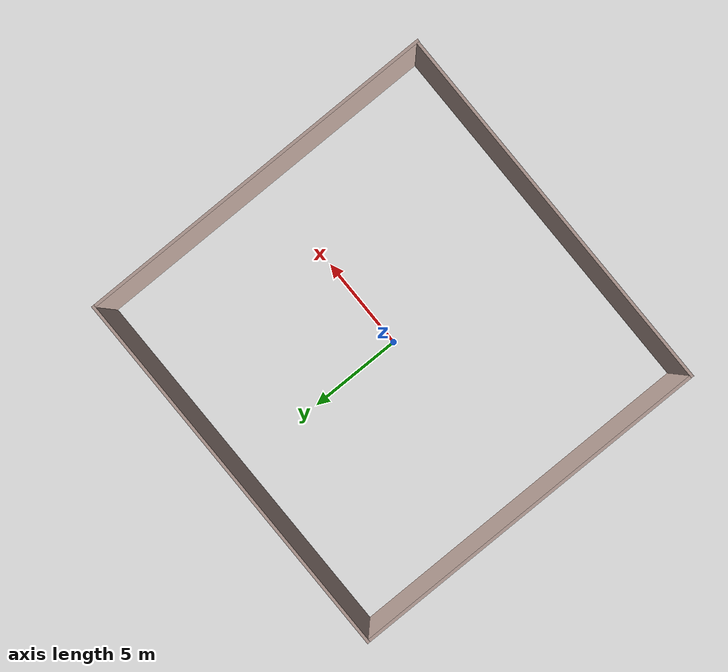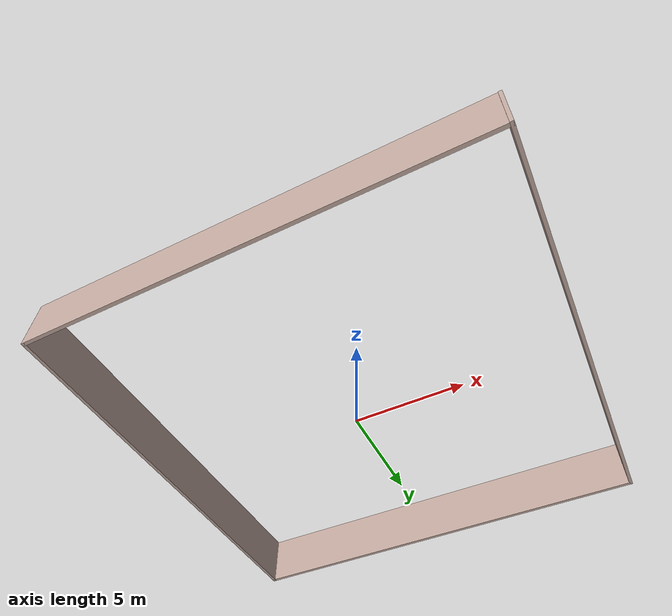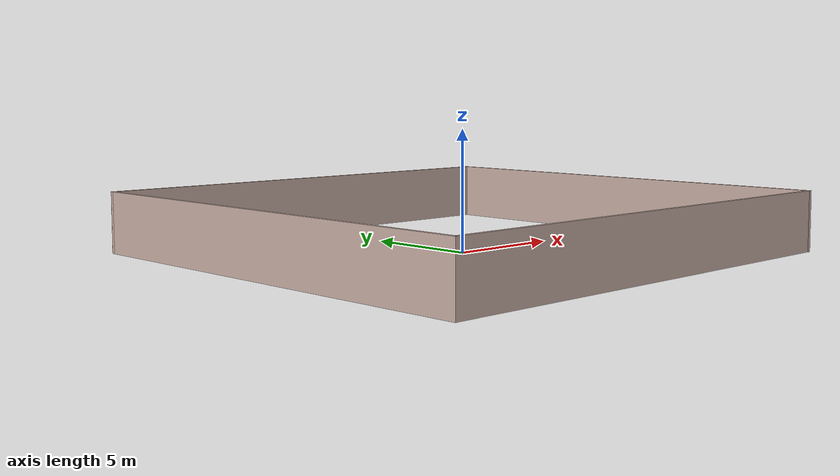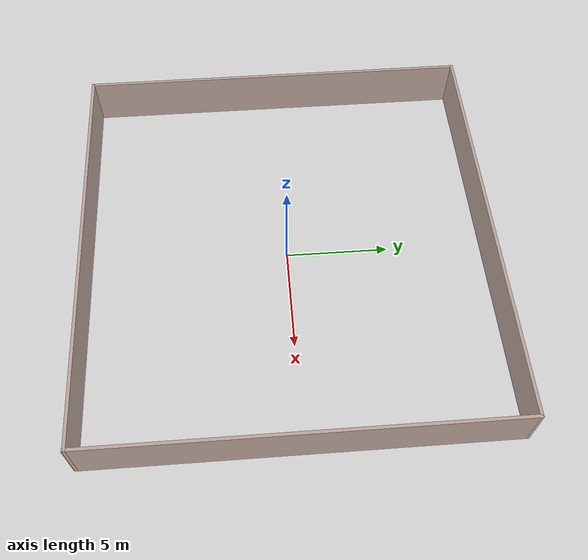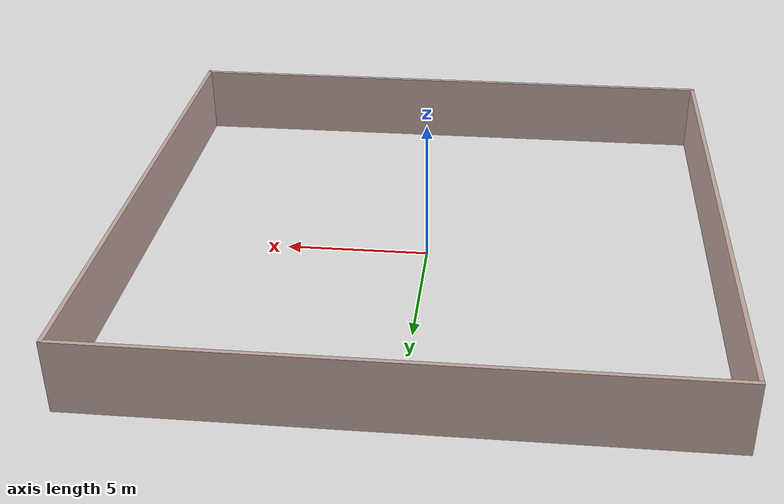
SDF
<?xml version='1.0'?>
<sdf version='1.6'>
  <model name='Room1'>
    <pose frame=''>0.052821 0.021612 0 0 -0 0</pose>
    <link name='Wall_5'>
      <collision name='Wall_5_Collision'>
        <geometry>
          <box>
            <size>20.2375 0.15 2.5</size>
          </box>
        </geometry>
        <pose frame=''>0 0 1.25 0 -0 0</pose>
      </collision>
      <visual name='Wall_5_Visual'>
        <pose frame=''>0 0 1.25 0 -0 0</pose>
        <geometry>
          <box>
            <size>20.2375 0.15 2.5</size>
          </box>
        </geometry>
        <material>
          <script>
            <uri>file://media/materials/scripts/gazebo.material</uri>
            <name>Gazebo/Grey</name>
          </script>
          <ambient>0.760784 0.662745 0.627451 1</ambient>
        </material>
        <meta>
          <layer>0</layer>
        </meta>
      </visual>
      <pose frame=''>0.00159 9.72367 0 0 -0 -0.001065</pose>
    </link>
    <link name='Wall_6'>
      <collision name='Wall_6_Collision'>
        <geometry>
          <box>
            <size>19.5759 0.15 2.5</size>
          </box>
        </geometry>
        <pose frame=''>0 0 1.25 0 -0 0</pose>
      </collision>
      <visual name='Wall_6_Visual'>
        <pose frame=''>0 0 1.25 0 -0 0</pose>
        <geometry>
          <box>
            <size>19.5759 0.15 2.5</size>
          </box>
        </geometry>
        <material>
          <script>
            <uri>file://media/materials/scripts/gazebo.material</uri>
            <name>Gazebo/Grey</name>
          </script>
          <ambient>0.760784 0.662745 0.627451 1</ambient>
        </material>
        <meta>
          <layer>0</layer>
        </meta>
      </visual>
      <pose frame=''>10.0461 -0.021509 0 0 -0 -1.57071</pose>
    </link>
    <link name='Wall_7'>
      <collision name='Wall_7_Collision'>
        <geometry>
          <box>
            <size>20.2388 0.15 2.5</size>
          </box>
        </geometry>
        <pose frame=''>0 0 1.25 0 -0 0</pose>
      </collision>
      <visual name='Wall_7_Visual'>
        <pose frame=''>0 0 1.25 0 -0 0</pose>
        <geometry>
          <box>
            <size>20.2388 0.15 2.5</size>
          </box>
        </geometry>
        <material>
          <script>
            <uri>file://media/materials/scripts/gazebo.material</uri>
            <name>Gazebo/Grey</name>
          </script>
          <ambient>0.760784 0.662745 0.627451 1</ambient>
        </material>
        <meta>
          <layer>0</layer>
        </meta>
      </visual>
      <pose frame=''>0.002679 -9.71325 0 0 -0 -3.14155</pose>
    </link>
    <link name='Wall_8'>
      <collision name='Wall_8_Collision'>
        <geometry>
          <box>
            <size>19.5906 0.15 2.5</size>
          </box>
        </geometry>
        <pose frame=''>0 0 1.25 0 -0 0</pose>
      </collision>
      <visual name='Wall_8_Visual'>
        <pose frame=''>0 0 1.25 0 -0 0</pose>
        <geometry>
          <box>
            <size>19.5906 0.15 2.5</size>
          </box>
        </geometry>
        <material>
          <script>
            <uri>file://media/materials/scripts/gazebo.material</uri>
            <name>Gazebo/Grey</name>
          </script>
          <ambient>0.760784 0.662745 0.627451 1</ambient>
        </material>
        <meta>
          <layer>0</layer>
        </meta>
      </visual>
      <pose frame=''>-10.0446 0.006648 0 0 -0 1.57054</pose>
    </link>
    <static>1</static>
  </model>
</sdf>
